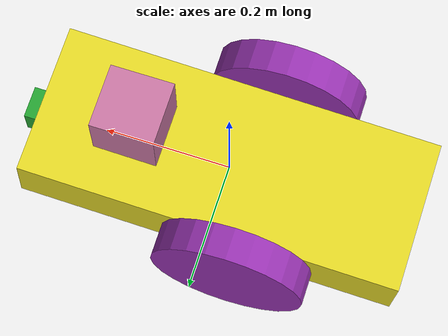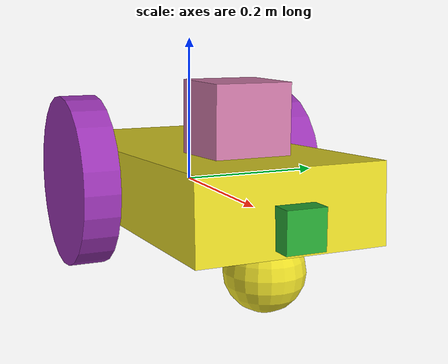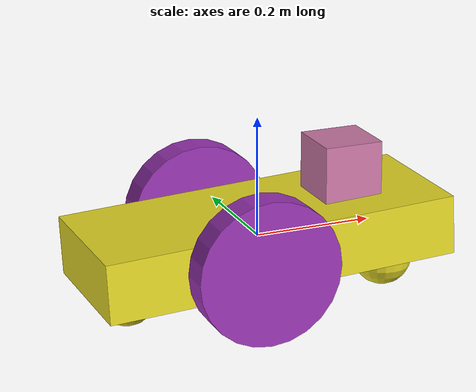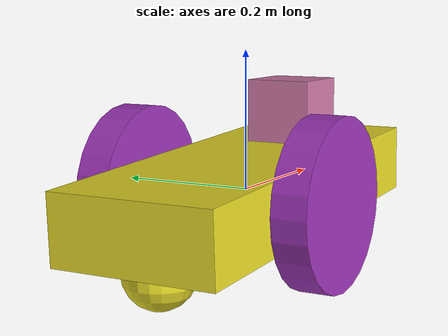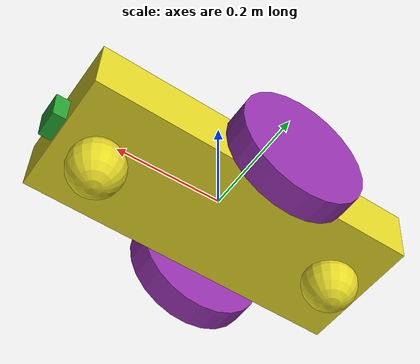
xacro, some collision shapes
<robot name="my_robot" xmlns:xacro="http://www.ros.org/wiki/xacro">
<xacro:include filename="$(find my_robot)/urdf/my_robot.gazebo" />

  <link name="robot_footprint"></link>

  <joint name="robot_footprint_joint" type="fixed">
    <origin xyz="0 0 0" rpy="0 0 0" />
    <parent link="robot_footprint"/>
    <child link="chassis" />
  </joint>

  <link name='chassis'>
    <pose>0 0 0.1 0 0 0</pose>

    <inertial>
      <mass value="15.0"/>
      <origin xyz="0 0 0" rpy=" 0 -0.05 0"/>
      <inertia
          ixx="0.166667" ixy="0" ixz="0"
          iyy="0.166667" iyz="0"
          izz="0.166667"
      />
    </inertial>

    <collision name='collision'>
      <origin xyz="0 0 0" rpy=" 0 -0.05 0"/>
      <geometry>
        <box size=".6 .24 .1"/>
      </geometry>
    </collision>

    <visual name='chassis_visual'>
      <origin xyz="0 0 0" rpy=" 0 -0.05 0"/>
      <geometry>
        <box size=".6 .24 .1"/>
      </geometry>
    </visual>

    <collision name='back_caster_collision'>
      <origin xyz="-0.23 0 -0.07" rpy=" 0 0 0"/>
      <geometry>
        <sphere radius="0.05"/>
      </geometry>
    </collision>

    <visual name='back_caster_visual'>
      <origin xyz="-0.23 0 -0.07" rpy=" 0 0 0"/>
      <geometry>
        <sphere radius="0.05"/>
      </geometry>
    </visual>

    <collision name='front_caster_collision'>
      <origin xyz="0.23 0 -0.07" rpy=" 0 0 0"/>
      <geometry>
        <sphere radius="0.05"/>
      </geometry>
    </collision>

    <visual name='front_caster_visual'>
      <origin xyz="0.23 0 -0.07" rpy=" 0 0 0"/>
      <geometry>
        <sphere radius="0.05"/>
      </geometry>
    </visual>

  </link>

  <link name ="left_wheel">
   <inertial>
     <mass value="5.0"/>
     <origin xyz="0 0 0" rpy="0 1.5707 1.5707"/>
     <inertia
          ixx="0.166667" ixy="0" ixz="0"
          iyy="0.166667" iyz="0"
          izz="0.166667"/>
    </inertial>

   <collision name="left_wheel_collision">
     <origin xyz="0 0 0" rpy="0 1.5707 1.5707"/>
     <geometry>
       <cylinder radius="0.12" length="0.05"/>
     </geometry>
   </collision>

   <visual name="left_wheel_visual">
     <origin xyz="0 0 0" rpy="0 1.5707 1.5707"/>
     <geometry>
       <cylinder radius="0.12" length="0.05"/>
     </geometry>
   </visual>
  </link>

  <joint type="continuous" name="left_wheel_hinge">
    <origin xyz="-0.05 0.15 0" rpy="0 0 0"/>
    <child link="left_wheel"/>
    <parent link="chassis"/>
    <axis xyz="0 1 0" rpy="0 0 0"/>
    <limit effort="10000" velocity="1000"/>
    <joint_properties damping="1.0" friction="1.0"/>
  </joint>

  <link name ="right_wheel">
   <inertial>
     <mass value="5.0"/>
     <origin xyz="0 0 0" rpy="0 1.5707 1.5707"/>
     <inertia
          ixx="0.166667" ixy="0" ixz="0"
          iyy="0.166667" iyz="0"
          izz="0.166667"/>
    </inertial>

   <collision name="right_wheel_collision">
     <origin xyz="0 0 0" rpy="0 1.5707 1.5707"/>
     <geometry>
       <cylinder radius="0.12" length="0.05"/>
     </geometry>
   </collision>

   <visual name="right_wheel_visual">
     <origin xyz="0 0 0" rpy="0 1.5707 1.5707"/>
     <geometry>
       <cylinder radius="0.12" length="0.05"/>
     </geometry>
   </visual>
  </link>

  <joint type="continuous" name="right_wheel_hinge">
    <origin xyz="-0.05 -0.15 0" rpy="0 0 0"/>
    <child link="right_wheel"/>
    <parent link="chassis"/>
    <axis xyz="0 1 0" rpy="0 0 0"/>
    <limit effort="10000" velocity="1000"/>
    <joint_properties damping="1.0" friction="1.0"/>
  </joint>

  <link name = "camera">
    <inertial>
      <mass value="0.1" />
      <origin xyz="0.05 0.05 0.05" rpy="0 0 0" />
      <inertia ixx="0.0000001" ixy="0" ixz="0" iyy="0.0000001" iyz="0" izz="0.0000001" />
    </inertial>

    <collision>
      <origin xyz="0 0 0" rpy="0 0 0"/>
      <geometry>
        <box size="0.05 0.05 0.05"/>
      </geometry>
    </collision>

    <visual>
      <origin xyz="0 0 0" rpy="0 0 0"/>
      <geometry>
        <box size="0.05 0.05 0.05"/>
      </geometry>
    </visual>
  </link>

 <joint name="camera_joint" type="fixed">
            <axis xyz="0 1 0" />
            <origin xyz="0.3 0 0" rpy="0 0 0"/>
            <parent link="chassis"/>
            <child link="camera"/>
 </joint>

  <joint name="camera_optical_joint" type="fixed">
    <origin xyz="0 0 0" rpy="-1.5707 0 -1.5707"/>
    <parent link="camera"/>
    <child link="camera_link_optical"/>
  </joint>

  <link name="camera_link_optical">
  </link>

 <link name="hokuyo">
    <collision name='hokuyo_collision'>
      <origin xyz="0 0 0" rpy="0 0 0"/>
      <geometry>
        <box size="0.1 0.1 0.1"/>
      </geometry>
    </collision>

    <visual>
      <origin xyz="0 0 0" rpy="0 0 0"/>
      <geometry>
        <mesh filename="package://my_robot/meshes/hokuyo.dae"/>
      </geometry>
    </visual>

    <inertial>
      <mass value="1e-5"/>
      <origin xyz="0.0 0 0" rpy="0 0 0"/>
      <inertia
          ixx="1e-6" ixy="0" ixz="0"
          iyy="1e-6" iyz="0"
          izz="1e-6"
      />
    </inertial>
  </link>

  <joint type="fixed" name="hokuyo_joint">
    <origin xyz="0.15 0 0.1" rpy="0 0 0"/>
    <child link="hokuyo"/>
    <parent link="chassis"/>
    <axis xyz="0 1 0" rpy="0 0 0"/>
  </joint>

<gazebo reference="chassis">
    <material>Gazebo/Yellow</material>
</gazebo>

<gazebo reference="left_wheel">
    <material>Gazebo/Purple</material>
</gazebo>

<gazebo reference="right_wheel">
    <material>Gazebo/Purple</material>
</gazebo>

<gazebo reference="camera">
    <material>Gazebo/Green</material>
</gazebo>
</robot>
